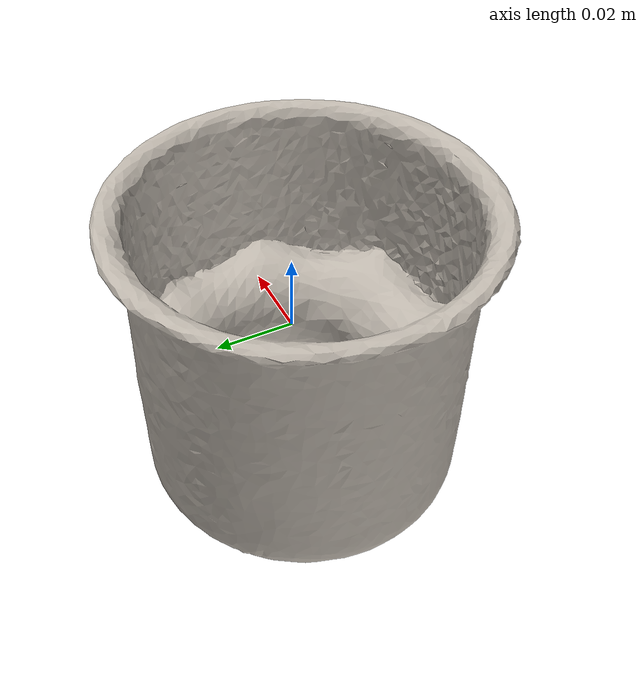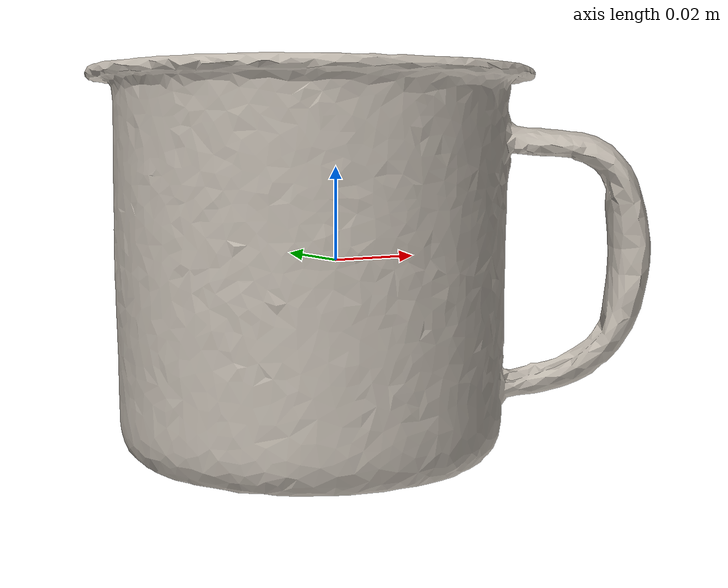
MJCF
<mujoco model="mug">
  <default>
    <default class="visual">
      <geom group="1" type="mesh" contype="0" conaffinity="0"/>
    </default>
    <default class="collision">
      <geom group="0" type="mesh"/>
    </default>
  </default>
  <asset>
    <texture type="2d" name="mug" file="mug.png"/>
    <material name="mug" texture="mug" specular="0.4000000000000001" shininess="0.001"/>
    <mesh name="mug" file="mug.obj"/>
  </asset>
  <worldbody>
    <body>
    <body name="object">
      <geom material="mug" mesh="mug" class="visual"/>
      <geom mesh="mug" class="collision"/>
    </body>
      <site rgba="0 0 0 0" size="0.005" pos="0 0 -0.04" name="bottom_site" />
      <site rgba="0 0 0 0" size="0.005" pos="0 0 0.04" name="top_site" />
      <site rgba="0 0 0 0" size="0.005" pos="0.005 0.005 0" name="horizontal_radius_site" />
   </body>
  </worldbody>
</mujoco>
